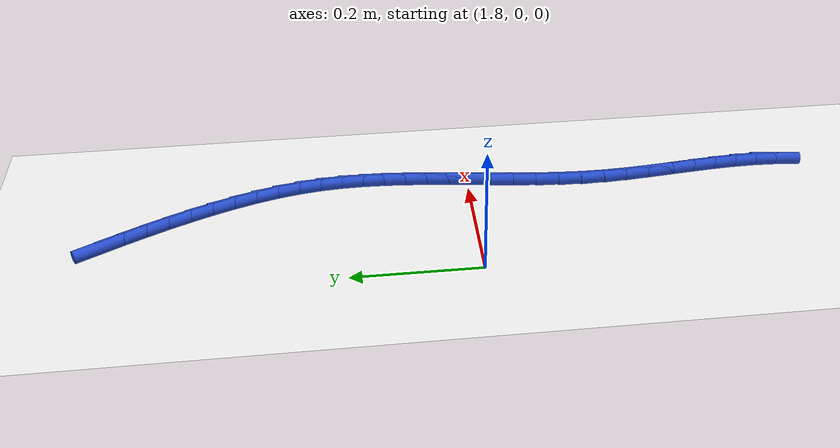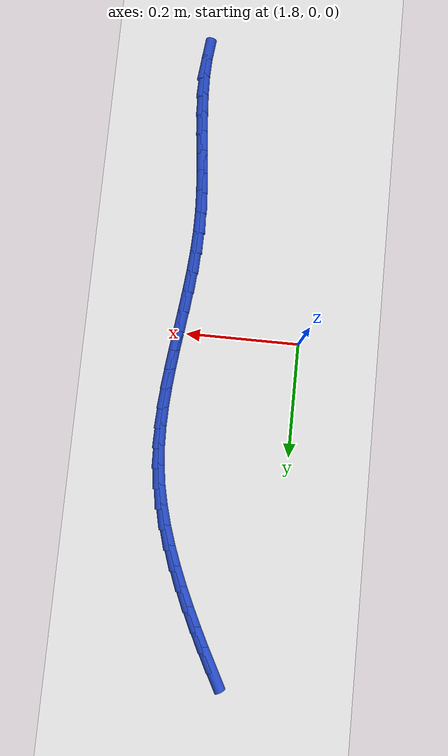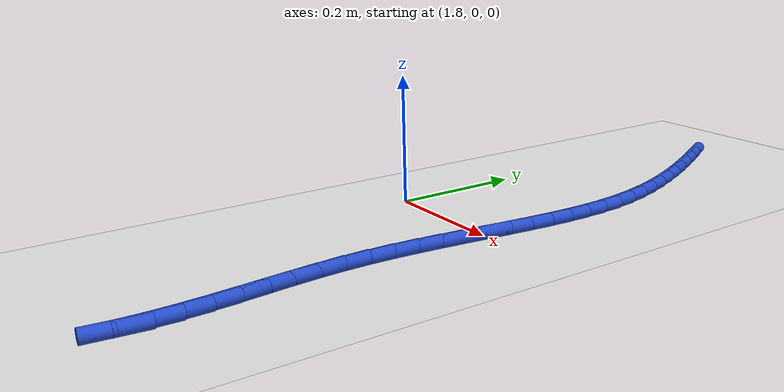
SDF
<sdf version="1.6">
 <world name="default">
  <model name="ground_plane">
   <static>1</static>
   <link name="link">
    <collision name="collision">
     <geometry><plane><normal>0 0 1</normal><size>100 100</size></plane></geometry>
     <surface><friction><ode><mu>100</mu><mu2>50</mu2></ode></friction></surface>
    </collision>
    <visual name="visual">
     <cast_shadows>0</cast_shadows>
     <geometry><plane><normal>0 0 1</normal><size>100 100</size></plane></geometry>
     <material>
      <script><uri>file://media/materials/scripts/gazebo.material</uri><name>Gazebo/WhiteGlow</name></script>
     </material>
    </visual>
   </link>
  </model>
  <model name="line">
   <link name="link_78">
    <pose>1.9003978009120903 0.5636240396137817 0.01 0 1.57 -1.078232834494338</pose>
    <collision name="collision">
     <geometry><cylinder><radius>0.01</radius><length>0.08</length></cylinder></geometry>
    </collision>
    <visual name="visual">
     <material>
      <script><name>Gazebo/Blue</name><uri>file://media/materials/scripts/gazebo.material</uri></script>
     </material>
     <geometry><cylinder><radius>0.01</radius><length>0.08</length></cylinder></geometry>
    </visual>
   </link>
   <link name="link_79">
    <pose>1.9170405009946003 0.5326138840674068 0.01 0 1.57 -1.098517281369968</pose>
    <collision name="collision">
     <geometry><cylinder><radius>0.01</radius><length>0.08</length></cylinder></geometry>
    </collision>
    <visual name="visual">
     <material>
      <script><name>Gazebo/Blue</name><uri>file://media/materials/scripts/gazebo.material</uri></script>
     </material>
     <geometry><cylinder><radius>0.01</radius><length>0.08</length></cylinder></geometry>
    </visual>
   </link>
   <link name="link_80">
    <pose>1.933128877530045 0.5011196939460568 0.01 0 1.57 -1.1184170196621157</pose>
    <collision name="collision">
     <geometry><cylinder><radius>0.01</radius><length>0.08</length></cylinder></geometry>
    </collision>
    <visual name="visual">
     <material>
      <script><name>Gazebo/Blue</name><uri>file://media/materials/scripts/gazebo.material</uri></script>
     </material>
     <geometry><cylinder><radius>0.01</radius><length>0.08</length></cylinder></geometry>
    </visual>
   </link>
   <link name="link_81">
    <pose>1.9486779913181542 0.46912516838150037 0.01 0 1.57 -1.1414653788005626</pose>
    <collision name="collision">
     <geometry><cylinder><radius>0.01</radius><length>0.08</length></cylinder></geometry>
    </collision>
    <visual name="visual">
     <material>
      <script><name>Gazebo/Blue</name><uri>file://media/materials/scripts/gazebo.material</uri></script>
     </material>
     <geometry><cylinder><radius>0.01</radius><length>0.08</length></cylinder></geometry>
    </visual>
   </link>
   <link name="link_82">
    <pose>1.9635417809252704 0.4366581164595528 0.01 0 1.57 -1.1704303089677381</pose>
    <collision name="collision">
     <geometry><cylinder><radius>0.01</radius><length>0.08</length></cylinder></geometry>
    </collision>
    <visual name="visual">
     <material>
      <script><name>Gazebo/Blue</name><uri>file://media/materials/scripts/gazebo.material</uri></script>
     </material>
     <geometry><cylinder><radius>0.01</radius><length>0.08</length></cylinder></geometry>
    </visual>
   </link>
   <link name="link_83">
    <pose>1.977457314371286 0.40377834256751455 0.01 0 1.57 -1.2057161202232565</pose>
    <collision name="collision">
     <geometry><cylinder><radius>0.01</radius><length>0.08</length></cylinder></geometry>
    </collision>
    <visual name="visual">
     <material>
      <script><name>Gazebo/Blue</name><uri>file://media/materials/scripts/gazebo.material</uri></script>
     </material>
     <geometry><cylinder><radius>0.01</radius><length>0.08</length></cylinder></geometry>
    </visual>
   </link>
   <link name="link_84">
    <pose>1.9901590394520825 0.3705463684236095 0.01 0 1.57 -1.2477626834367828</pose>
    <collision name="collision">
     <geometry><cylinder><radius>0.01</radius><length>0.08</length></cylinder></geometry>
    </collision>
    <visual name="visual">
     <material>
      <script><name>Gazebo/Blue</name><uri>file://media/materials/scripts/gazebo.material</uri></script>
     </material>
     <geometry><cylinder><radius>0.01</radius><length>0.08</length></cylinder></geometry>
    </visual>
   </link>
   <link name="link_85">
    <pose>2.0013814039635442 0.33702271574606324 0.01 0 1.57 -1.2970706186575005</pose>
    <collision name="collision">
     <geometry><cylinder><radius>0.01</radius><length>0.08</length></cylinder></geometry>
    </collision>
    <visual name="visual">
     <material>
      <script><name>Gazebo/Blue</name><uri>file://media/materials/scripts/gazebo.material</uri></script>
     </material>
     <geometry><cylinder><radius>0.01</radius><length>0.08</length></cylinder></geometry>
    </visual>
   </link>
   <link name="link_86">
    <pose>2.0108588557015525 0.30326790625310057 0.01 0 1.57 -1.3541507414183585</pose>
    <collision name="collision">
     <geometry><cylinder><radius>0.01</radius><length>0.08</length></cylinder></geometry>
    </collision>
    <visual name="visual">
     <material>
      <script><name>Gazebo/Blue</name><uri>file://media/materials/scripts/gazebo.material</uri></script>
     </material>
     <geometry><cylinder><radius>0.01</radius><length>0.08</length></cylinder></geometry>
    </visual>
   </link>
   <link name="link_87">
    <pose>2.0183258424619903 0.2693424616629458 0.01 0 1.57 -1.4193325804099395</pose>
    <collision name="collision">
     <geometry><cylinder><radius>0.01</radius><length>0.08</length></cylinder></geometry>
    </collision>
    <visual name="visual">
     <material>
      <script><name>Gazebo/Blue</name><uri>file://media/materials/scripts/gazebo.material</uri></script>
     </material>
     <geometry><cylinder><radius>0.01</radius><length>0.08</length></cylinder></geometry>
    </visual>
   </link>
   <link name="link_88">
    <pose>2.023520867443934 0.23530634810076057 0.01 0 1.57 -1.4864577079917625</pose>
    <collision name="collision">
     <geometry><cylinder><radius>0.01</radius><length>0.08</length></cylinder></geometry>
    </collision>
    <visual name="visual">
     <material>
      <script><name>Gazebo/Blue</name><uri>file://media/materials/scripts/gazebo.material</uri></script>
     </material>
     <geometry><cylinder><radius>0.01</radius><length>0.08</length></cylinder></geometry>
    </visual>
   </link>
   <link name="link_89">
    <pose>2.0264051172472377 0.20118902391061705 0.01 0 1.57 -1.5454195501869865</pose>
    <collision name="collision">
     <geometry><cylinder><radius>0.01</radius><length>0.08</length></cylinder></geometry>
    </collision>
    <visual name="visual">
     <material>
      <script><name>Gazebo/Blue</name><uri>file://media/materials/scripts/gazebo.material</uri></script>
     </material>
     <geometry><cylinder><radius>0.01</radius><length>0.08</length></cylinder></geometry>
    </visual>
   </link>
   <link name="link_90">
    <pose>2.027273565151893 0.16697421842880267 0.01 0 1.57 1.5467723588953435</pose>
    <collision name="collision">
     <geometry><cylinder><radius>0.01</radius><length>0.08</length></cylinder></geometry>
    </collision>
    <visual name="visual">
     <material>
      <script><name>Gazebo/Blue</name><uri>file://media/materials/scripts/gazebo.material</uri></script>
     </material>
     <geometry><cylinder><radius>0.01</radius><length>0.08</length></cylinder></geometry>
    </visual>
   </link>
   <link name="link_91">
    <pose>2.0264486080163557 0.1326419039422433 0.01 0 1.57 1.5071754629393956</pose>
    <collision name="collision">
     <geometry><cylinder><radius>0.01</radius><length>0.08</length></cylinder></geometry>
    </collision>
    <visual name="visual">
     <material>
      <script><name>Gazebo/Blue</name><uri>file://media/materials/scripts/gazebo.material</uri></script>
     </material>
     <geometry><cylinder><radius>0.01</radius><length>0.08</length></cylinder></geometry>
    </visual>
   </link>
   <link name="link_92">
    <pose>2.0242526426990812 0.0981720527378658 0.01 0 1.57 1.4773694596257096</pose>
    <collision name="collision">
     <geometry><cylinder><radius>0.01</radius><length>0.08</length></cylinder></geometry>
    </collision>
    <visual name="visual">
     <material>
      <script><name>Gazebo/Blue</name><uri>file://media/materials/scripts/gazebo.material</uri></script>
     </material>
     <geometry><cylinder><radius>0.01</radius><length>0.08</length></cylinder></geometry>
    </visual>
   </link>
   <link name="link_93">
    <pose>2.0210080660585237 0.06354463710259715 0.01 0 1.57 1.457200698054488</pose>
    <collision name="collision">
     <geometry><cylinder><radius>0.01</radius><length>0.08</length></cylinder></geometry>
    </collision>
    <visual name="visual">
     <material>
      <script><name>Gazebo/Blue</name><uri>file://media/materials/scripts/gazebo.material</uri></script>
     </material>
     <geometry><cylinder><radius>0.01</radius><length>0.08</length></cylinder></geometry>
    </visual>
   </link>
   <link name="link_94">
    <pose>2.0170372749531396 0.028739629323363186 0.01 0 1.57 1.4464615784883157</pose>
    <collision name="collision">
     <geometry><cylinder><radius>0.01</radius><length>0.08</length></cylinder></geometry>
    </collision>
    <visual name="visual">
     <material>
      <script><name>Gazebo/Blue</name><uri>file://media/materials/scripts/gazebo.material</uri></script>
     </material>
     <geometry><cylinder><radius>0.01</radius><length>0.08</length></cylinder></geometry>
    </visual>
   </link>
   <link name="link_95">
    <pose>2.012662666241384 -0.006262998312909187 0.01 0 1.57 1.4449461090039684</pose>
    <collision name="collision">
     <geometry><cylinder><radius>0.01</radius><length>0.08</length></cylinder></geometry>
    </collision>
    <visual name="visual">
     <material>
      <script><name>Gazebo/Blue</name><uri>file://media/materials/scripts/gazebo.material</uri></script>
     </material>
     <geometry><cylinder><radius>0.01</radius><length>0.08</length></cylinder></geometry>
    </visual>
   </link>
   <link name="link_96">
    <pose>2.008206636781712 -0.041483273519293345 0.01 0 1.57 1.4524768703284798</pose>
    <collision name="collision">
     <geometry><cylinder><radius>0.01</radius><length>0.08</length></cylinder></geometry>
    </collision>
    <visual name="visual">
     <material>
      <script><name>Gazebo/Blue</name><uri>file://media/materials/scripts/gazebo.material</uri></script>
     </material>
     <geometry><cylinder><radius>0.01</radius><length>0.08</length></cylinder></geometry>
    </visual>
   </link>
   <link name="link_97">
    <pose>2.003991583432579 -0.07694122400886272 0.01 0 1.57 1.4689072453747698</pose>
    <collision name="collision">
     <geometry><cylinder><radius>0.01</radius><length>0.08</length></cylinder></geometry>
    </collision>
    <visual name="visual">
     <material>
      <script><name>Gazebo/Blue</name><uri>file://media/materials/scripts/gazebo.material</uri></script>
     </material>
     <geometry><cylinder><radius>0.01</radius><length>0.08</length></cylinder></geometry>
    </visual>
   </link>
   <link name="link_98">
    <pose>2.0003399030524402 -0.11265687749469006 0.01 0 1.57 1.4941020827960823</pose>
    <collision name="collision">
     <geometry><cylinder><radius>0.01</radius><length>0.08</length></cylinder></geometry>
    </collision>
    <visual name="visual">
     <material>
      <script><name>Gazebo/Blue</name><uri>file://media/materials/scripts/gazebo.material</uri></script>
     </material>
     <geometry><cylinder><radius>0.01</radius><length>0.08</length></cylinder></geometry>
    </visual>
   </link>
   <link name="link_99">
    <pose>1.997573992499751 -0.14865026168985013 0.01 0 1.57 1.5278991311415935</pose>
    <collision name="collision">
     <geometry><cylinder><radius>0.01</radius><length>0.08</length></cylinder></geometry>
    </collision>
    <visual name="visual">
     <material>
      <script><name>Gazebo/Blue</name><uri>file://media/materials/scripts/gazebo.material</uri></script>
     </material>
     <geometry><cylinder><radius>0.01</radius><length>0.08</length></cylinder></geometry>
    </visual>
   </link>
   <link name="link_100">
    <pose>1.9960162486329673 -0.18494140430741585 0.01 0 1.57 1.570049883960774</pose>
    <collision name="collision">
     <geometry><cylinder><radius>0.01</radius><length>0.08</length></cylinder></geometry>
    </collision>
    <visual name="visual">
     <material>
      <script><name>Gazebo/Blue</name><uri>file://media/materials/scripts/gazebo.material</uri></script>
     </material>
     <geometry><cylinder><radius>0.01</radius><length>0.08</length></cylinder></geometry>
    </visual>
   </link>
   <link name="link_101">
    <pose>1.995988922179069 -0.22155030129716988 0.01 0 1.57 -1.5265392126294135</pose>
    <collision name="collision">
     <geometry><cylinder><radius>0.01</radius><length>0.08</length></cylinder></geometry>
    </collision>
    <visual name="visual">
     <material>
      <script><name>Gazebo/Blue</name><uri>file://media/materials/scripts/gazebo.material</uri></script>
     </material>
     <geometry><cylinder><radius>0.01</radius><length>0.08</length></cylinder></geometry>
    </visual>
   </link>
   <link name="link_102">
    <pose>1.997623304403802 -0.2584554414601834 0.01 0 1.57 -1.4937457575919812</pose>
    <collision name="collision">
     <geometry><cylinder><radius>0.01</radius><length>0.08</length></cylinder></geometry>
    </collision>
    <visual name="visual">
     <material>
      <script><name>Gazebo/Blue</name><uri>file://media/materials/scripts/gazebo.material</uri></script>
     </material>
     <geometry><cylinder><radius>0.01</radius><length>0.08</length></cylinder></geometry>
    </visual>
   </link>
   <link name="link_103">
    <pose>2.000484211280899 -0.2955121839341151 0.01 0 1.57 -1.4753100219135096</pose>
    <collision name="collision">
     <geometry><cylinder><radius>0.01</radius><length>0.08</length></cylinder></geometry>
    </collision>
    <visual name="visual">
     <material>
      <script><name>Gazebo/Blue</name><uri>file://media/materials/scripts/gazebo.material</uri></script>
     </material>
     <geometry><cylinder><radius>0.01</radius><length>0.08</length></cylinder></geometry>
    </visual>
   </link>
   <link name="link_104">
    <pose>2.004031906178608 -0.33255316219267433 0.01 0 1.57 -1.4708869496371808</pose>
    <collision name="collision">
     <geometry><cylinder><radius>0.01</radius><length>0.08</length></cylinder></geometry>
    </collision>
    <visual name="visual">
     <material>
      <script><name>Gazebo/Blue</name><uri>file://media/materials/scripts/gazebo.material</uri></script>
     </material>
     <geometry><cylinder><radius>0.01</radius><length>0.08</length></cylinder></geometry>
    </visual>
   </link>
   <link name="link_105">
    <pose>2.007726652465181 -0.36941100970956997 0.01 0 1.57 -1.480592568389205</pose>
    <collision name="collision">
     <geometry><cylinder><radius>0.01</radius><length>0.08</length></cylinder></geometry>
    </collision>
    <visual name="visual">
     <material>
      <script><name>Gazebo/Blue</name><uri>file://media/materials/scripts/gazebo.material</uri></script>
     </material>
     <geometry><cylinder><radius>0.01</radius><length>0.08</length></cylinder></geometry>
    </visual>
   </link>
   <link name="link_106">
    <pose>2.011028713508866 -0.40591835995851283 0.01 0 1.57 -1.5050486887021397</pose>
    <collision name="collision">
     <geometry><cylinder><radius>0.01</radius><length>0.08</length></cylinder></geometry>
    </collision>
    <visual name="visual">
     <material>
      <script><name>Gazebo/Blue</name><uri>file://media/materials/scripts/gazebo.material</uri></script>
     </material>
     <geometry><cylinder><radius>0.01</radius><length>0.08</length></cylinder></geometry>
    </visual>
   </link>
   <link name="link_107">
    <pose>2.013398352677913 -0.44190784641321196 0.01 0 1.57 -1.5453804844702999</pose>
    <collision name="collision">
     <geometry><cylinder><radius>0.01</radius><length>0.08</length></cylinder></geometry>
    </collision>
    <visual name="visual">
     <material>
      <script><name>Gazebo/Blue</name><uri>file://media/materials/scripts/gazebo.material</uri></script>
     </material>
     <geometry><cylinder><radius>0.01</radius><length>0.08</length></cylinder></geometry>
    </visual>
   </link>
   <link name="link_108">
    <pose>2.014295833340573 -0.47721210254737645 0.01 0 1.57 1.5384604086840221</pose>
    <collision name="collision">
     <geometry><cylinder><radius>0.01</radius><length>0.08</length></cylinder></geometry>
    </collision>
    <visual name="visual">
     <material>
      <script><name>Gazebo/Blue</name><uri>file://media/materials/scripts/gazebo.material</uri></script>
     </material>
     <geometry><cylinder><radius>0.01</radius><length>0.08</length></cylinder></geometry>
    </visual>
   </link>
   <link name="link_109">
    <pose>2.013181418865095 -0.5116637618347162 0.01 0 1.57 1.461574920841088</pose>
    <collision name="collision">
     <geometry><cylinder><radius>0.01</radius><length>0.08</length></cylinder></geometry>
    </collision>
    <visual name="visual">
     <material>
      <script><name>Gazebo/Blue</name><uri>file://media/materials/scripts/gazebo.material</uri></script>
     </material>
     <geometry><cylinder><radius>0.01</radius><length>0.08</length></cylinder></geometry>
    </visual>
   </link>
  </model>
 </world>
</sdf>
